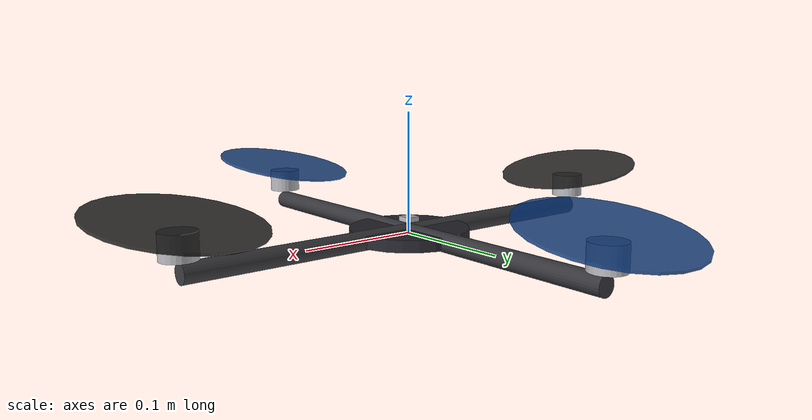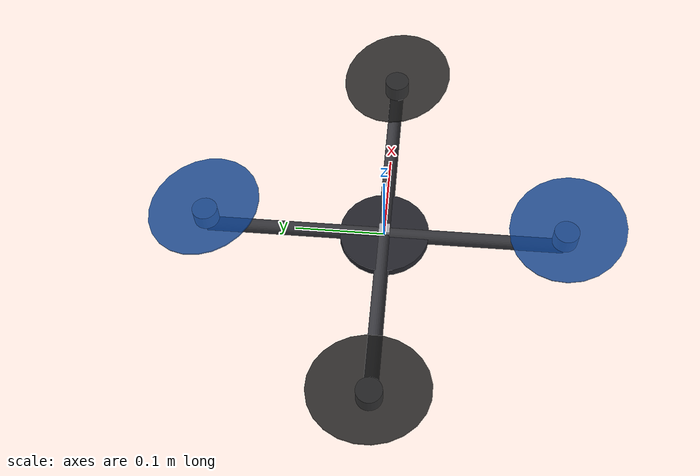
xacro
<?xml version="1.0"?>
<robot name="symmetric_4rotor_drone" xmlns:xacro="http://www.ros.org/wiki/xacro">

  <material name="mat_core"><color rgba="0.15 0.15 0.18 1.0"/></material>
  <material name="mat_arm"><color rgba="0.22 0.22 0.24 1.0"/></material>
  <material name="mat_motor"><color rgba="0.70 0.70 0.72 1.0"/></material>
  <material name="mat_rotor_ccw"><color rgba="0.10 0.10 0.10 0.85"/></material>
  <material name="mat_rotor_cw"><color rgba="0.05 0.25 0.55 0.85"/></material>

  <xacro:macro name="inertial_box" params="mass x y z">
    <inertial><origin xyz="0 0 0" rpy="0 0 0"/><mass value="${mass}"/><inertia ixx="${mass*(y*y + z*z)/12.0}" ixy="0.0" ixz="0.0" iyy="${mass*(x*x + z*z)/12.0}" iyz="0.0" izz="${mass*(x*x + y*y)/12.0}"/></inertial>
  </xacro:macro>
  <xacro:macro name="inertial_cylinder_z" params="mass radius length">
    <inertial><origin xyz="0 0 0" rpy="0 0 0"/><mass value="${mass}"/><inertia ixx="${mass*(3*radius*radius + length*length)/12.0}" ixy="0.0" ixz="0.0" iyy="${mass*(3*radius*radius + length*length)/12.0}" iyz="0.0" izz="${0.5*mass*radius*radius}"/></inertial>
  </xacro:macro>

  <link name="base_link">
    <visual><geometry><cylinder radius="0.050000" length="0.010000"/></geometry><material name="mat_core"/></visual>
    <collision><geometry><cylinder radius="0.050000" length="0.010000"/></geometry></collision>
    <xacro:inertial_cylinder_z mass="0.400000" radius="0.050000" length="0.010000"/>
  </link>

  <link name="imu_link">
    <visual><origin xyz="0 0 0.012" rpy="0 0 0"/><geometry><box size="0.012 0.012 0.004"/></geometry><material name="mat_motor"/></visual>
    <collision><origin xyz="0 0 0.012" rpy="0 0 0"/><geometry><box size="0.012 0.012 0.004"/></geometry></collision>
    <xacro:inertial_box mass="0.005" x="0.012" y="0.012" z="0.004"/>
  </link>
  <joint name="imu_joint" type="fixed"><parent link="base_link"/><child link="imu_link"/><origin xyz="0 0 0" rpy="0 0 0"/></joint>

  <!-- arm_1: spin=ccw, propsize=2.0, pitch=0.045, blades=2, arm_rpy=(0.0, 0.0, 0.0), motor_xyz=(0.2, 0.0, 0.02), rotor_rpy=(-0.11523507794139515, -0.1382782586375768, -0.3324924713441331) -->
  <link name="arm_1_arm_link">
    <visual><origin xyz="0.100000 0 0" rpy="0 1.57079632679 0"/><geometry><cylinder radius="0.008000" length="0.200000"/></geometry><material name="mat_arm"/></visual>
    <collision><origin xyz="0.100000 0 0" rpy="0 1.57079632679 0"/><geometry><cylinder radius="0.008000" length="0.200000"/></geometry></collision>
    <xacro:inertial_cylinder_z mass="0.036000" radius="0.008000" length="0.200000"/>
  </link>
  <joint name="base_to_arm_1_arm_joint" type="fixed"><parent link="base_link"/><child link="arm_1_arm_link"/><origin xyz="0.000000 0.000000 0.000000" rpy="0.000000 0.000000 0.000000"/></joint>

  <link name="arm_1_motor_link">
    <visual><geometry><cylinder radius="0.014000" length="0.020000"/></geometry><material name="mat_motor"/></visual>
    <collision><geometry><cylinder radius="0.014000" length="0.020000"/></geometry></collision>
    <xacro:inertial_cylinder_z mass="0.060000" radius="0.014000" length="0.020000"/>
  </link>
  <joint name="arm_1_arm_to_motor_joint" type="fixed"><parent link="arm_1_arm_link"/><child link="arm_1_motor_link"/><origin xyz="0.200000 0.000000 0.020000" rpy="0.000000 0.000000 0.000000"/></joint>

  <link name="arm_1_rotor_link">
    <visual><origin xyz="0 0 0" rpy="0.000000 0.000000 0.000000"/><geometry><cylinder radius="0.063500" length="0.002000"/></geometry><material name="mat_rotor_ccw"/></visual>
    <collision><origin xyz="0 0 0" rpy="0.000000 0.000000 0.000000"/><geometry><cylinder radius="0.063500" length="0.002000"/></geometry></collision>
    <xacro:inertial_cylinder_z mass="0.010000" radius="0.010000" length="0.006000"/>
  </link>
  <joint name="arm_1_motor_to_rotor_joint" type="fixed"><parent link="arm_1_motor_link"/><child link="arm_1_rotor_link"/><origin xyz="0.000000 0.000000 0.016000" rpy="-0.115235 -0.138278 -0.332492"/></joint>

  <!-- arm_2: spin=cw, propsize=2.0, pitch=0.045, blades=2, arm_rpy=(0.0, 0.0, 1.5707963267948966), motor_xyz=(0.2, 0.0, 0.02), rotor_rpy=(-0.028190953289960036, 0.17777871119063524, -0.19375248329582406) -->
  <link name="arm_2_arm_link">
    <visual><origin xyz="0.100000 0 0" rpy="0 1.57079632679 0"/><geometry><cylinder radius="0.008000" length="0.200000"/></geometry><material name="mat_arm"/></visual>
    <collision><origin xyz="0.100000 0 0" rpy="0 1.57079632679 0"/><geometry><cylinder radius="0.008000" length="0.200000"/></geometry></collision>
    <xacro:inertial_cylinder_z mass="0.036000" radius="0.008000" length="0.200000"/>
  </link>
  <joint name="base_to_arm_2_arm_joint" type="fixed"><parent link="base_link"/><child link="arm_2_arm_link"/><origin xyz="0.000000 0.000000 0.000000" rpy="0.000000 0.000000 1.570796"/></joint>

  <link name="arm_2_motor_link">
    <visual><geometry><cylinder radius="0.014000" length="0.020000"/></geometry><material name="mat_motor"/></visual>
    <collision><geometry><cylinder radius="0.014000" length="0.020000"/></geometry></collision>
    <xacro:inertial_cylinder_z mass="0.060000" radius="0.014000" length="0.020000"/>
  </link>
  <joint name="arm_2_arm_to_motor_joint" type="fixed"><parent link="arm_2_arm_link"/><child link="arm_2_motor_link"/><origin xyz="0.200000 0.000000 0.020000" rpy="0.000000 0.000000 0.000000"/></joint>

  <link name="arm_2_rotor_link">
    <visual><origin xyz="0 0 0" rpy="0.000000 0.000000 0.000000"/><geometry><cylinder radius="0.063500" length="0.002000"/></geometry><material name="mat_rotor_cw"/></visual>
    <collision><origin xyz="0 0 0" rpy="0.000000 0.000000 0.000000"/><geometry><cylinder radius="0.063500" length="0.002000"/></geometry></collision>
    <xacro:inertial_cylinder_z mass="0.010000" radius="0.010000" length="0.006000"/>
  </link>
  <joint name="arm_2_motor_to_rotor_joint" type="fixed"><parent link="arm_2_motor_link"/><child link="arm_2_rotor_link"/><origin xyz="0.000000 0.000000 0.016000" rpy="-0.028191 0.177779 -0.193752"/></joint>

  <!-- arm_3: spin=ccw, propsize=2.0, pitch=0.045, blades=2, arm_rpy=(0.0, 0.0, 3.141592653589793), motor_xyz=(0.2, 0.0, 0.02), rotor_rpy=(-0.015282276700373144, -0.17935008229396837, 0.12368964119603792) -->
  <link name="arm_3_arm_link">
    <visual><origin xyz="0.100000 0 0" rpy="0 1.57079632679 0"/><geometry><cylinder radius="0.008000" length="0.200000"/></geometry><material name="mat_arm"/></visual>
    <collision><origin xyz="0.100000 0 0" rpy="0 1.57079632679 0"/><geometry><cylinder radius="0.008000" length="0.200000"/></geometry></collision>
    <xacro:inertial_cylinder_z mass="0.036000" radius="0.008000" length="0.200000"/>
  </link>
  <joint name="base_to_arm_3_arm_joint" type="fixed"><parent link="base_link"/><child link="arm_3_arm_link"/><origin xyz="0.000000 0.000000 0.000000" rpy="0.000000 0.000000 3.141593"/></joint>

  <link name="arm_3_motor_link">
    <visual><geometry><cylinder radius="0.014000" length="0.020000"/></geometry><material name="mat_motor"/></visual>
    <collision><geometry><cylinder radius="0.014000" length="0.020000"/></geometry></collision>
    <xacro:inertial_cylinder_z mass="0.060000" radius="0.014000" length="0.020000"/>
  </link>
  <joint name="arm_3_arm_to_motor_joint" type="fixed"><parent link="arm_3_arm_link"/><child link="arm_3_motor_link"/><origin xyz="0.200000 0.000000 0.020000" rpy="0.000000 0.000000 0.000000"/></joint>

  <link name="arm_3_rotor_link">
    <visual><origin xyz="0 0 0" rpy="0.000000 0.000000 0.000000"/><geometry><cylinder radius="0.063500" length="0.002000"/></geometry><material name="mat_rotor_ccw"/></visual>
    <collision><origin xyz="0 0 0" rpy="0.000000 0.000000 0.000000"/><geometry><cylinder radius="0.063500" length="0.002000"/></geometry></collision>
    <xacro:inertial_cylinder_z mass="0.010000" radius="0.010000" length="0.006000"/>
  </link>
  <joint name="arm_3_motor_to_rotor_joint" type="fixed"><parent link="arm_3_motor_link"/><child link="arm_3_rotor_link"/><origin xyz="0.000000 0.000000 0.016000" rpy="-0.015282 -0.179350 0.123690"/></joint>

  <!-- arm_4: spin=cw, propsize=2.0, pitch=0.045, blades=2, arm_rpy=(0.0, 0.0, 4.71238898038469), motor_xyz=(0.2, 0.0, 0.02), rotor_rpy=(0.1402506005787192, -0.11282627813283821, -0.2891428171594087) -->
  <link name="arm_4_arm_link">
    <visual><origin xyz="0.100000 0 0" rpy="0 1.57079632679 0"/><geometry><cylinder radius="0.008000" length="0.200000"/></geometry><material name="mat_arm"/></visual>
    <collision><origin xyz="0.100000 0 0" rpy="0 1.57079632679 0"/><geometry><cylinder radius="0.008000" length="0.200000"/></geometry></collision>
    <xacro:inertial_cylinder_z mass="0.036000" radius="0.008000" length="0.200000"/>
  </link>
  <joint name="base_to_arm_4_arm_joint" type="fixed"><parent link="base_link"/><child link="arm_4_arm_link"/><origin xyz="0.000000 0.000000 0.000000" rpy="0.000000 0.000000 4.712389"/></joint>

  <link name="arm_4_motor_link">
    <visual><geometry><cylinder radius="0.014000" length="0.020000"/></geometry><material name="mat_motor"/></visual>
    <collision><geometry><cylinder radius="0.014000" length="0.020000"/></geometry></collision>
    <xacro:inertial_cylinder_z mass="0.060000" radius="0.014000" length="0.020000"/>
  </link>
  <joint name="arm_4_arm_to_motor_joint" type="fixed"><parent link="arm_4_arm_link"/><child link="arm_4_motor_link"/><origin xyz="0.200000 0.000000 0.020000" rpy="0.000000 0.000000 0.000000"/></joint>

  <link name="arm_4_rotor_link">
    <visual><origin xyz="0 0 0" rpy="0.000000 0.000000 0.000000"/><geometry><cylinder radius="0.063500" length="0.002000"/></geometry><material name="mat_rotor_cw"/></visual>
    <collision><origin xyz="0 0 0" rpy="0.000000 0.000000 0.000000"/><geometry><cylinder radius="0.063500" length="0.002000"/></geometry></collision>
    <xacro:inertial_cylinder_z mass="0.010000" radius="0.010000" length="0.006000"/>
  </link>
  <joint name="arm_4_motor_to_rotor_joint" type="fixed"><parent link="arm_4_motor_link"/><child link="arm_4_rotor_link"/><origin xyz="0.000000 0.000000 0.016000" rpy="0.140251 -0.112826 -0.289143"/></joint>

</robot>
